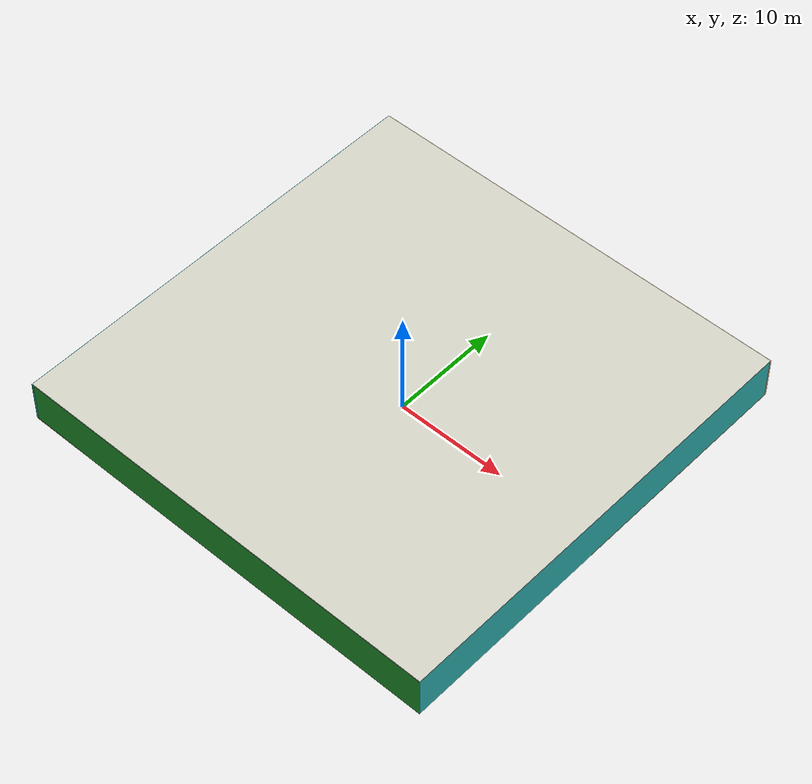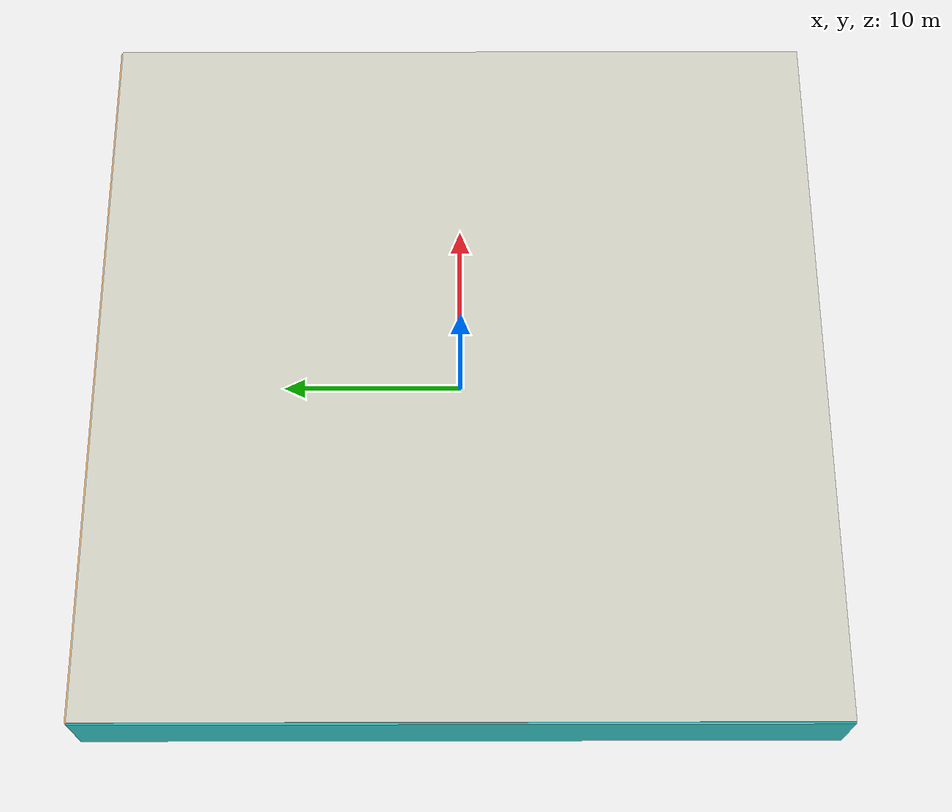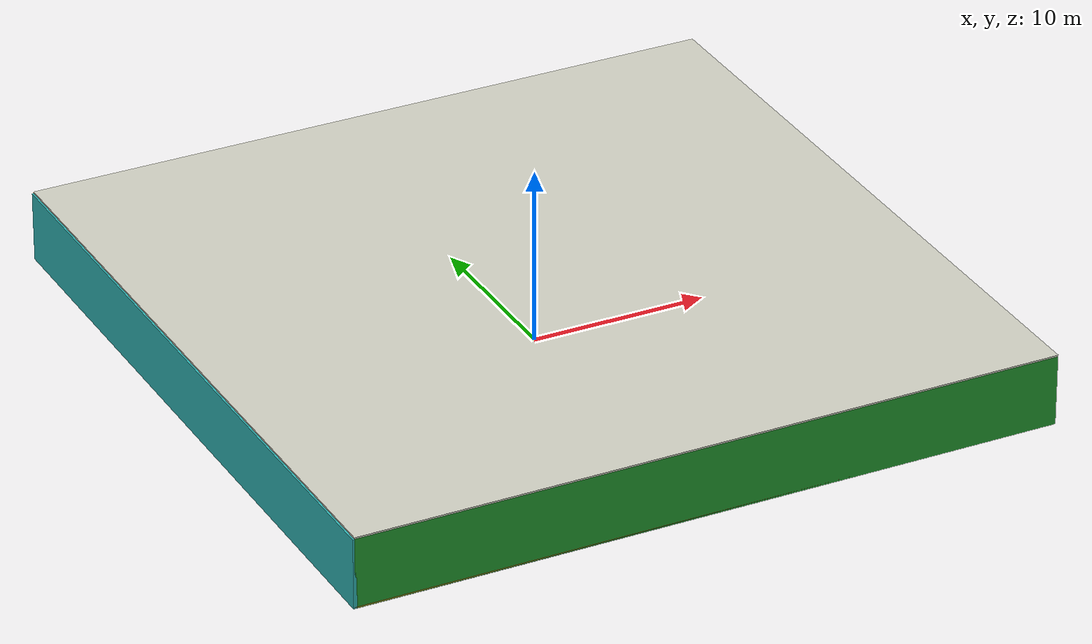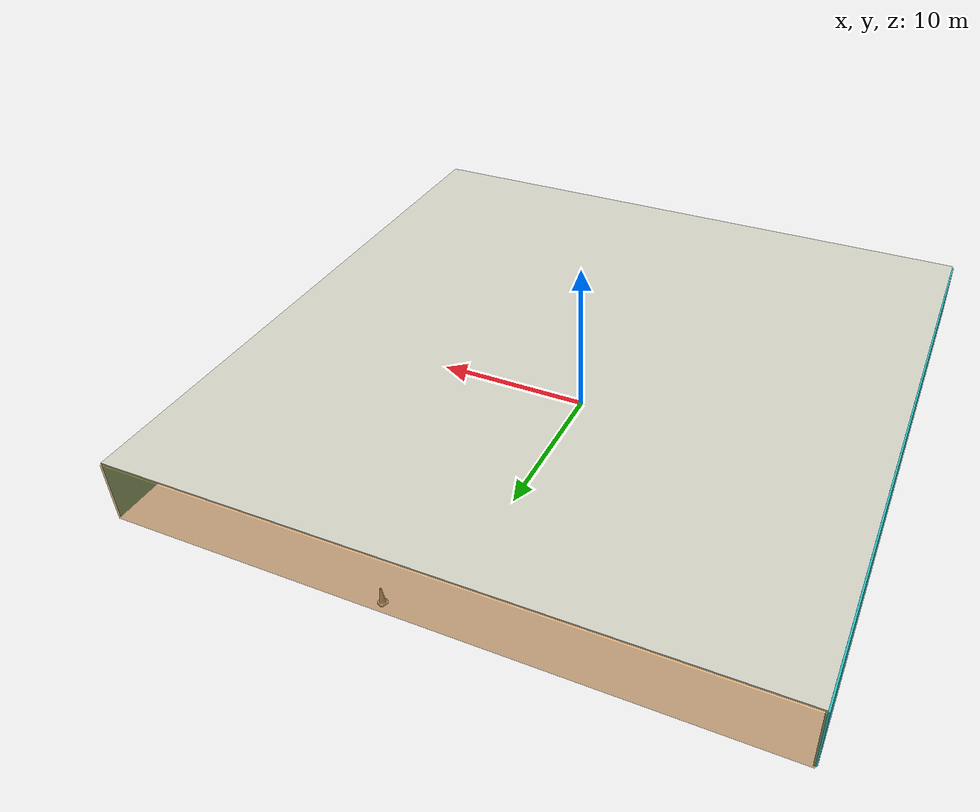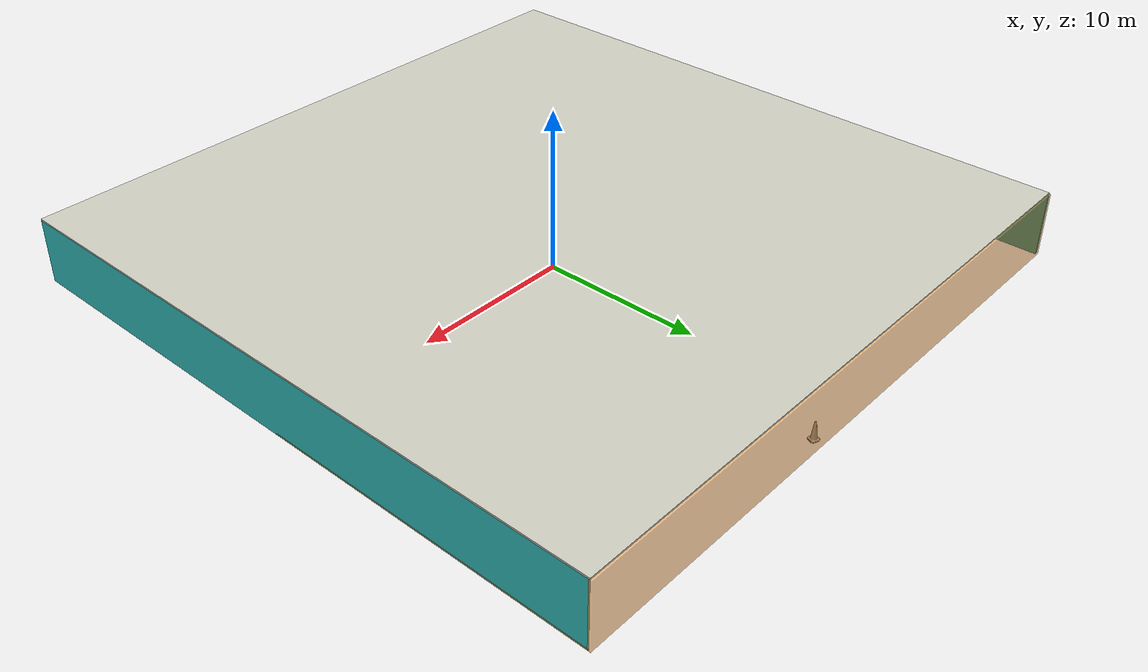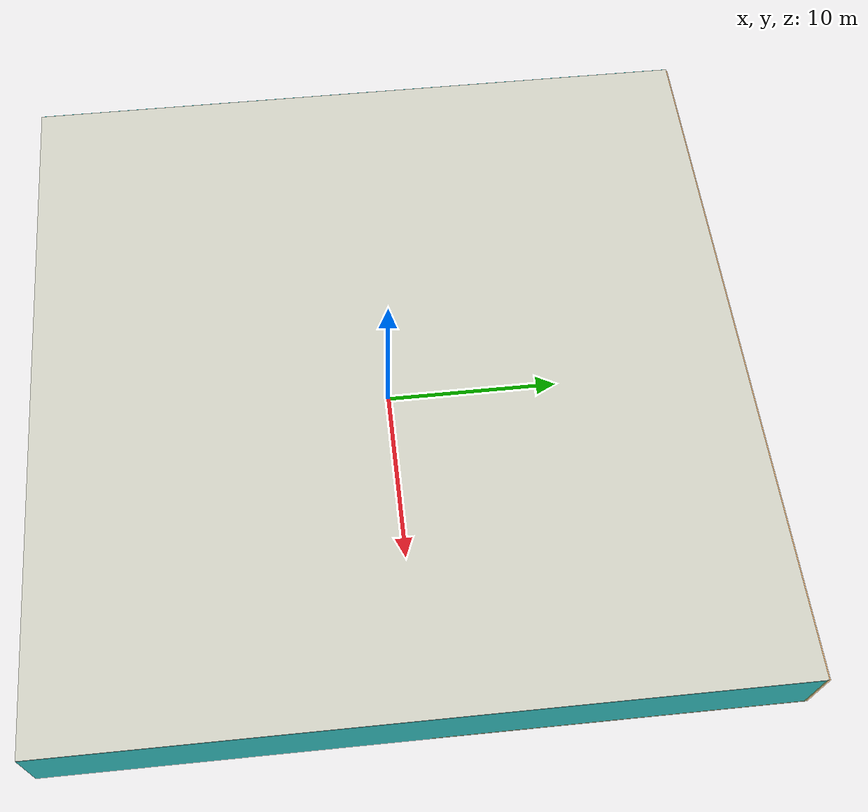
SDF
<sdf version="1.4">
 <world name="default">
  <physics type="ode">
   <max_step_size>0.001</max_step_size>
   <real_time_factor>1</real_time_factor>
   <real_time_update_rate>1000</real_time_update_rate>
   <gravity>0 0 -9.8</gravity>
  </physics>
  <scene><ambient>0.4 0.4 0.4 1</ambient><background>0.7 0.7 0.7 1</background><shadows>1</shadows></scene>
  <model name="Surrounding">
   <static>1</static>
   <link name="Ceiling">
    <collision name="Ceiling_Collision"><geometry><box><size>40 40 0.1</size></box></geometry></collision>
    <visual name="Ceiling_Visual">
     <geometry><box><size>40 40 0.1</size></box></geometry>
     <material>
      <script><uri>file://media/materials/scripts/gazebo.material</uri><name>Gazebo/PaintedWall</name></script>
     </material>
    </visual>
    <pose>0 0 4.05 0 0 0</pose>
   </link>
   <link name="Wall_South">
    <collision name="Wall_South_Collision">
     <geometry><box><size>40 0 4</size></box></geometry>
     <pose>0 0 2 0 -0 0</pose>
    </collision>
    <visual name="Wall_South_Visual">
     <pose>0 0 2 0 -0 0</pose>
     <geometry><box><size>40 0 4</size></box></geometry>
     <material>
      <script><uri>file://media/materials/scripts/gazebo.material</uri><name>Gazebo/Green</name></script>
     </material>
    </visual>
    <velocity_decay><linear>0</linear><angular>0</angular></velocity_decay>
    <pose>0 -20 0 0 -0 0</pose>
   </link>
   <link name="Wall_East">
    <collision name="Wall_21_Collision">
     <geometry><box><size>40 0 4</size></box></geometry>
     <pose>0 0 2 0 -0 0</pose>
    </collision>
    <visual name="Wall_21_Visual">
     <pose>0 0 2 0 -0 0</pose>
     <geometry><box><size>40 0 4</size></box></geometry>
     <material>
      <script><uri>file://media/materials/scripts/gazebo.material</uri><name>Gazebo/TurquoiseGlow</name></script>
     </material>
    </visual>
    <velocity_decay><linear>0</linear><angular>0</angular></velocity_decay>
    <pose>20 0 0 0 -0 1.5708</pose>
   </link>
   <link name="Wall_North">
    <collision name="Wall_22_Collision">
     <geometry><box><size>40 0.2 4</size></box></geometry>
     <pose>0 0 2 0 -0 0</pose>
    </collision>
    <visual name="Wall_22_Visual">
     <pose>0 0 2 0 -0 0</pose>
     <geometry><box><size>40 0.2 4</size></box></geometry>
     <material>
      <script>
       <uri>file://media/materials/scripts/gazebo.material</uri>
       <name>Gazebo/OrangeTransparent</name>
      </script>
     </material>
    </visual>
    <velocity_decay><linear>0</linear><angular>0</angular></velocity_decay>
    <pose>0 20 0 0 -0 0</pose>
   </link>
   <link name="Wall_West">
    <collision name="Wall_23_Collision">
     <geometry><box><size>40 0.2 4</size></box></geometry>
     <pose>0 0 2 0 -0 0</pose>
    </collision>
    <visual name="Wall_23_Visual">
     <pose>0 0 2 0 -0 0</pose>
     <geometry><box><size>40 0.2 4</size></box></geometry>
     <material>
      <script>
       <uri>file://media/materials/scripts/gazebo.material</uri>
       <name>Gazebo/TurquoiseGlowOutline</name>
      </script>
     </material>
    </visual>
    <velocity_decay><linear>0</linear><angular>0</angular></velocity_decay>
    <pose>-20 0 0 0 0 -1.5708</pose>
   </link>
   <link name="Ground_link">
    <collision name="collision">
     <pose>0 0 .05 0 -0 0</pose>
     <geometry><box><size>40 40 0.1</size></box></geometry>
    </collision>
    <visual name="visual">
     <pose>0 0 .05 0 -0 0</pose>
     <geometry><box><size>40 40 0.1</size></box></geometry>
     <material>
      <script>
       <uri>file://media/materials/scripts/gazebo.material</uri>
       <name>Gazebo/OrangeTransparent</name>
      </script>
     </material>
    </visual>
   </link>
   <static>1</static>
  </model>
  <spherical_coordinates>
   <surface_model>EARTH_WGS84</surface_model>
   <latitude_deg>0</latitude_deg>
   <longitude_deg>0</longitude_deg>
   <elevation>0</elevation>
   <heading_deg>0</heading_deg>
  </spherical_coordinates>
  <light name="lightball_0" type="diffuse">
   <diffuse>0.8 0.8 0.8 1</diffuse>
   <specular>0.2 0.2 0.2 1</specular>
   <attenuation>
    <range>100</range>
    <constant>0.7</constant>
    <linear>0.01</linear>
    <quadratic>0.001</quadratic>
   </attenuation>
   <direction>-0.5 0.1 -0.9</direction>
   <pose>19.2686429171 -6.94027151172 0.790405411763 0 0 0</pose>
  </light>
  <light name="lightball_1" type="diffuse">
   <diffuse>0.8 0.8 0.8 1</diffuse>
   <specular>0.2 0.2 0.2 1</specular>
   <attenuation>
    <range>100</range>
    <constant>0.7</constant>
    <linear>0.01</linear>
    <quadratic>0.001</quadratic>
   </attenuation>
   <direction>-0.5 0.1 -0.9</direction>
   <pose>-15.0217025699 15.9593069814 2.19417919516 0 0 0</pose>
  </light>
  <light name="lightball_2" type="diffuse">
   <diffuse>0.8 0.8 0.8 1</diffuse>
   <specular>0.2 0.2 0.2 1</specular>
   <attenuation>
    <range>100</range>
    <constant>0.7</constant>
    <linear>0.01</linear>
    <quadratic>0.001</quadratic>
   </attenuation>
   <direction>-0.5 0.1 -0.9</direction>
   <pose>1.14670785669 10.9190104448 1.16097501582 0 0 0</pose>
  </light>
  <light name="lightball_3" type="diffuse">
   <diffuse>0.8 0.8 0.8 1</diffuse>
   <specular>0.2 0.2 0.2 1</specular>
   <attenuation>
    <range>100</range>
    <constant>0.7</constant>
    <linear>0.01</linear>
    <quadratic>0.001</quadratic>
   </attenuation>
   <direction>-0.5 0.1 -0.9</direction>
   <pose>-9.8487151694 -8.65744389339 2.94329091983 0 0 0</pose>
  </light>
  <light name="lightball_4" type="diffuse">
   <diffuse>0.8 0.8 0.8 1</diffuse>
   <specular>0.2 0.2 0.2 1</specular>
   <attenuation>
    <range>100</range>
    <constant>0.7</constant>
    <linear>0.01</linear>
    <quadratic>0.001</quadratic>
   </attenuation>
   <direction>-0.5 0.1 -0.9</direction>
   <pose>-0.326451068191 18.1419651892 1.43495444012 0 0 0</pose>
  </light>
  <light name="lightball_5" type="diffuse">
   <diffuse>0.8 0.8 0.8 1</diffuse>
   <specular>0.2 0.2 0.2 1</specular>
   <attenuation>
    <range>100</range>
    <constant>0.7</constant>
    <linear>0.01</linear>
    <quadratic>0.001</quadratic>
   </attenuation>
   <direction>-0.5 0.1 -0.9</direction>
   <pose>11.9944006954 -11.4871551159 2.79154245992 0 0 0</pose>
  </light>
  <light name="lightball_6" type="diffuse">
   <diffuse>0.8 0.8 0.8 1</diffuse>
   <specular>0.2 0.2 0.2 1</specular>
   <attenuation>
    <range>100</range>
    <constant>0.7</constant>
    <linear>0.01</linear>
    <quadratic>0.001</quadratic>
   </attenuation>
   <direction>-0.5 0.1 -0.9</direction>
   <pose>10.6344578444 -0.711649254873 1.42042093867 0 0 0</pose>
  </light>
  <light name="lightball_7" type="diffuse">
   <diffuse>0.8 0.8 0.8 1</diffuse>
   <specular>0.2 0.2 0.2 1</specular>
   <attenuation>
    <range>100</range>
    <constant>0.7</constant>
    <linear>0.01</linear>
    <quadratic>0.001</quadratic>
   </attenuation>
   <direction>-0.5 0.1 -0.9</direction>
   <pose>-19.44875258 19.6519579087 0.783129264852 0 0 0</pose>
  </light>
  <light name="lightball_8" type="diffuse">
   <diffuse>0.8 0.8 0.8 1</diffuse>
   <specular>0.2 0.2 0.2 1</specular>
   <attenuation>
    <range>100</range>
    <constant>0.7</constant>
    <linear>0.01</linear>
    <quadratic>0.001</quadratic>
   </attenuation>
   <direction>-0.5 0.1 -0.9</direction>
   <pose>15.7936124129 -3.70834973045 3.40381608711 0 0 0</pose>
  </light>
  <light name="lightball_9" type="diffuse">
   <diffuse>0.8 0.8 0.8 1</diffuse>
   <specular>0.2 0.2 0.2 1</specular>
   <attenuation>
    <range>100</range>
    <constant>0.7</constant>
    <linear>0.01</linear>
    <quadratic>0.001</quadratic>
   </attenuation>
   <direction>-0.5 0.1 -0.9</direction>
   <pose>12.2723375637 -5.77693063063 2.34232934595 0 0 0</pose>
  </light>
  <include>
   <uri>model://construction_cone</uri>
   <pose>-17.2394800808 -6.10622225699 0 0 0 2.66327060581</pose>
  </include>
  <include>
   <uri>model://textured_shapes</uri>
   <pose>-14.3229162615 10.322649563 0 0 0 0.125200369246</pose>
  </include>
  <include>
   <uri>model://construction_cone</uri>
   <pose>-13.7020368885 12.4045347428 0 0 0 2.87333078108</pose>
  </include>
  <include><uri>model://table</uri><pose>-11.9172883404 -6.27308556742 0 0 0 0.135390965071</pose></include>
  <include>
   <uri>model://construction_cone</uri>
   <pose>-11.1496796317 3.84998417387 0 0 0 1.06525654931</pose>
  </include>
  <include><uri>model://table</uri><pose>-10.5595869189 11.7187073583 0 0 0 2.84609842468</pose></include>
  <include>
   <uri>model://construction_cone</uri>
   <pose>-7.31529962835 -4.69587977022 0 0 0 0.980551404212</pose>
  </include>
  <include><uri>model://cabinet</uri><pose>-9.2954000237 7.08813993401 0 0 0 1.50558636929</pose></include>
  <include>
   <uri>model://robocup_3Dsim_goal</uri>
   <pose>-6.4161565782 -8.12213386246 0 0 0 0.955514976022</pose>
  </include>
  <include>
   <uri>model://construction_cone</uri>
   <pose>-2.94706749804 -13.5286142994 0 0 0 0.918341252036</pose>
  </include>
  <include>
   <uri>model://construction_cone</uri>
   <pose>-3.38085009717 2.66564182522 0 0 0 1.85263860975</pose>
  </include>
  <include>
   <uri>model://robocup_3Dsim_goal</uri>
   <pose>-2.23676384458 10.1669409636 0 0 0 2.92004255559</pose>
  </include>
  <include><uri>model://cabinet</uri><pose>1.42364224105 -11.9135468791 0 0 0 2.46701569011</pose></include>
  <include><uri>model://cabinet</uri><pose>-0.196979618413 0.767307711194 0 0 0 1.63227083865</pose></include>
  <include><uri>model://cabinet</uri><pose>4.65559639725 -10.6567013925 0 0 0 1.98910661544</pose></include>
  <include><uri>model://cabinet</uri><pose>3.08224825293 -2.81846815801 0 0 0 1.72011047345</pose></include>
  <include>
   <uri>model://robocup_3Dsim_goal</uri>
   <pose>4.29748053031 6.22190792462 0 0 0 0.471808460911</pose>
  </include>
  <include><uri>model://cabinet</uri><pose>4.53624386569 10.1991576466 0 0 0 2.00979352295</pose></include>
  <include>
   <uri>model://construction_cone</uri>
   <pose>2.87728715868 19.5149428787 0 0 0 1.18061149523</pose>
  </include>
  <include>
   <uri>model://construction_cone</uri>
   <pose>5.89448255747 -7.38589667753 0 0 0 0.924396710784</pose>
  </include>
  <include><uri>model://table</uri><pose>5.86630770323 -5.80022302792 0 0 0 0.530766139556</pose></include>
  <include>
   <uri>model://robocup_3Dsim_goal</uri>
   <pose>5.56818985951 13.6301330694 0 0 0 2.96005011865</pose>
  </include>
  <include><uri>model://cabinet</uri><pose>11.7121096533 -5.21375533988 0 0 0 0.935734432469</pose></include>
  <include>
   <uri>model://textured_shapes</uri>
   <pose>12.4725803739 13.1859880271 0 0 0 2.67046819004</pose>
  </include>
  <include><uri>model://table</uri><pose>15.9893458586 -16.8891456057 0 0 0 0.106641505556</pose></include>
  <include>
   <uri>model://construction_cone</uri>
   <pose>16.5167009557 -13.6669953348 0 0 0 2.58459809052</pose>
  </include>
  <include>
   <uri>model://construction_cone</uri>
   <pose>14.7633057567 -11.2399341027 0 0 0 0.390413470186</pose>
  </include>
  <include><uri>model://cabinet</uri><pose>16.2214173845 -4.39147885813 0 0 0 3.03194597159</pose></include>
  <include><uri>model://cabinet</uri><pose>16.6066165743 2.68303705891 0 0 0 0.170805902746</pose></include>
  <include><uri>model://table</uri><pose>15.2957744442 8.68703924374 0 0 0 0.721665207454</pose></include>
  <include>
   <uri>model://construction_cone</uri>
   <pose>14.3453478464 13.2237724057 0 0 0 2.68213901356</pose>
  </include>
  <include><uri>model://cabinet</uri><pose>17.5068772515 1.01480237337 0 0 0 2.06123336068</pose></include>
  <include>
   <uri>model://construction_cone</uri>
   <pose>19.2139721984 7.16540064226 0 0 0 2.01270672847</pose>
  </include>
 </world>
</sdf>

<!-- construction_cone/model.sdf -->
<sdf version="1.5">
  <model name="Construction Cone">
    <link name="link">
      <collision name="collision">
        <geometry>
          <mesh>
            <scale>10 10 10</scale>
            <uri>file://isr-testbed/construction_cone/meshes/construction_cone.dae</uri>
          </mesh>
        </geometry>
      </collision>
      <visual name="visual">
        <geometry>
          <mesh>
            <scale>10 10 10</scale>
            <uri>file://isr-testbed/construction_cone/meshes/construction_cone.dae</uri>
          </mesh>
        </geometry>
      </visual>
    </link>
  </model>
</sdf>

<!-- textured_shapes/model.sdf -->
<sdf version="1.6">
  <model name="textured_shapes">
    <pose>0 0 0.5 0 0 0</pose>
    <link name="box">
      <pose>0 -1.5 0 0 0 0</pose>
      <collision name="collision">
        <geometry>
          <box>
            <size>1 1 1</size>
          </box>
        </geometry>
      </collision>
      <visual name="visual">
        <geometry>
          <box>
            <size>1 1 1</size>
          </box>
        </geometry>
        <material>
          <script>
            <uri>model://../model_source/models/textured_shapes/materials/scripts</uri>
            <uri>model://../model_source/models/textured_shapes/materials/textures</uri>
            <name>TexturedShape/Squares</name>
          </script>
        </material>
      </visual>
    </link>
    <link name="sphere">
      <collision name="collision">
        <geometry>
          <sphere>
            <radius>0.5</radius>
          </sphere>
        </geometry>
      </collision>
      <visual name="visual">
        <geometry>
          <sphere>
            <radius>0.5</radius>
          </sphere>
        </geometry>
        <material>
          <script>
            <uri>model://../model_source/models/textured_shapes/materials/scripts</uri>
            <uri>model://../model_source/models/textured_shapes/materials/textures</uri>
            <name>TexturedShape/Squares</name>
          </script>
        </material>
      </visual>
    </link>
    <link name="cylinder">
      <pose>0 1.5 0 0 0 0</pose>
      <collision name="collision">
        <geometry>
          <cylinder>
            <radius>0.5</radius>
            <length>1</length>
          </cylinder>
        </geometry>
      </collision>
      <visual name="visual">
        <geometry>
          <cylinder>
            <radius>0.5</radius>
            <length>1</length>
          </cylinder>
        </geometry>
        <material>
          <script>
            <uri>model://../model_source/models/textured_shapes/materials/scripts</uri>
            <uri>model://../model_source/models/textured_shapes/materials/textures</uri>
            <name>TexturedShape/Squares</name>
          </script>
        </material>
      </visual>
    </link>
  </model>
</sdf>

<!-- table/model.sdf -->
<sdf version="1.5">
  <model name="table">
    <static>true</static>
    <link name="link">
      <collision name="surface">
        <pose>0 0 1.0 0 0 0</pose>
        <geometry>
          <box>
            <size>1.5 0.8 0.03</size>
          </box>
        </geometry>
        <surface>
          <friction>
            <ode>
              <mu>0.6</mu>
              <mu2>0.6</mu2>
            </ode>
          </friction>
        </surface>
      </collision>
      <visual name="visual1">
        <pose>0 0 1.0 0 0 0</pose>
        <geometry>
          <box>
            <size>1.5 0.8 0.03</size>
          </box>
        </geometry>
        <material>
          <script>
            <uri>model://media/materials/scripts/gazebo.material</uri>
            <name>Gazebo/Wood</name>
          </script>
        </material>
      </visual>
      <collision name="front_left_leg">
        <pose>0.68 0.38 0.5 0 0 0</pose>
        <geometry>
          <cylinder>
            <radius>0.02</radius>
            <length>1.0</length>
          </cylinder>
        </geometry>
      </collision>
      <visual name="front_left_leg">
        <pose>0.68 0.38 0.5 0 0 0</pose>
        <geometry>
          <cylinder>
            <radius>0.02</radius>
            <length>1.0</length>
          </cylinder>
        </geometry>
        <material>
          <script>
            <uri>model://media/materials/scripts/gazebo.material</uri>
            <name>Gazebo/Grey</name>
          </script>
        </material>
      </visual>
      <collision name="front_right_leg">
        <pose>0.68 -0.38 0.5 0 0 0</pose>
        <geometry>
          <cylinder>
            <radius>0.02</radius>
            <length>1.0</length>
          </cylinder>
        </geometry>
      </collision>
      <visual name="front_right_leg">
        <pose>0.68 -0.38 0.5 0 0 0</pose>
        <geometry>
          <cylinder>
            <radius>0.02</radius>
            <length>1.0</length>
          </cylinder>
        </geometry>
        <material>
          <script>
            <uri>model://media/materials/scripts/gazebo.material</uri>
            <name>Gazebo/Grey</name>
          </script>
        </material>
      </visual>
      <collision name="back_right_leg">
        <pose>-0.68 -0.38 0.5 0 0 0</pose>
        <geometry>
          <cylinder>
            <radius>0.02</radius>
            <length>1.0</length>
          </cylinder>
        </geometry>
      </collision>
      <visual name="back_right_leg">
        <pose>-0.68 -0.38 0.5 0 0 0</pose>
        <geometry>
          <cylinder>
            <radius>0.02</radius>
            <length>1.0</length>
          </cylinder>
        </geometry>
        <material>
          <script>
            <uri>model://media/materials/scripts/gazebo.material</uri>
            <name>Gazebo/Grey</name>
          </script>
        </material>
      </visual>
      <collision name="back_left_leg">
        <pose>-0.68 0.38 0.5 0 0 0</pose>
        <geometry>
          <cylinder>
            <radius>0.02</radius>
            <length>1.0</length>
          </cylinder>
        </geometry>
      </collision>
      <visual name="back_left_leg">
        <pose>-0.68 0.38 0.5 0 0 0</pose>
        <geometry>
          <cylinder>
            <radius>0.02</radius>
            <length>1.0</length>
          </cylinder>
        </geometry>
        <material>
          <script>
            <uri>model://media/materials/scripts/gazebo.material</uri>
            <name>Gazebo/Grey</name>
          </script>
        </material>
      </visual>
    </link>
  </model>
</sdf>

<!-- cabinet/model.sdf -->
<sdf version="1.5">
  <model name="cabinet">
    <static>true</static>
    <link name="cabinet_bottom_plate">
      <inertial>
        <pose>0 0 -1 0 0 0</pose>
        <inertia>
          <ixx>2.050000</ixx>
          <ixy>0</ixy>
          <ixz>0</ixz>
          <iyy>2.050000</iyy>
          <iyz>0</iyz>
          <izz>2.050000</izz>
        </inertia>
        <mass>25.000000</mass>
      </inertial>
      <collision name="cabinet_bottom_plate_geom">
        <pose>0 0 0.010000 0 0 0</pose>
        <geometry>
          <box>
            <size>0.450000 0.450000 0.020000</size>
          </box>
        </geometry>
      </collision>
      <visual name="cabinet_bottom_plate_geom_visual">
        <pose>0 0 0.010000 0 0 0</pose>
        <geometry>
          <box>
            <size>0.450000 0.450000 0.020000</size>
          </box>
        </geometry>
        <material>
          <script>
            <uri>model://media/materials/scripts/gazebo.material</uri>
            <name>Gazebo/Wood</name>
          </script>
        </material>
      </visual>
      <collision name="cabinet_bottom_plate_geom_cabinet_back_plate">
        <pose>0.235000 0 0.510000 0 0 0</pose>
        <geometry>
          <box>
            <size>0.020000 0.450000 1.020000</size>
          </box>
        </geometry>
      </collision>
      <visual name="cabinet_bottom_plate_geom_cabinet_back_plate_visual">
        <pose>0.235000 0 0.510000 0 0 0</pose>
        <geometry>
          <box>
            <size>0.020000 0.450000 1.020000</size>
          </box>
        </geometry>
        <material>
          <script>
            <uri>model://media/materials/scripts/gazebo.material</uri>
            <name>Gazebo/Wood</name>
          </script>
        </material>
      </visual>
      <collision name="cabinet_bottom_plate_geom_cabinet_left_plate">
        <pose>0 0.235000 0.510000 0 0 0</pose>
        <geometry>
          <box>
            <size>0.450000 0.020000 1.020000</size>
          </box>
        </geometry>
      </collision>
      <visual name="cabinet_bottom_plate_geom_cabinet_left_plate_visual">
        <pose>0 0.235000 0.510000 0 0 0</pose>
        <geometry>
          <box>
            <size>0.450000 0.020000 1.020000</size>
          </box>
        </geometry>
        <material>
          <script>
            <uri>model://media/materials/scripts/gazebo.material</uri>
            <name>Gazebo/Wood</name>
          </script>
        </material>
      </visual>
      <collision name="cabinet_bottom_plate_geom_cabinet_middle_plate">
        <pose>0 0 0.510000 0 0 0</pose>
        <geometry>
          <box>
            <size>0.450000 0.450000 0.020000</size>
          </box>
        </geometry>
      </collision>
      <visual name="cabinet_bottom_plate_geom_cabinet_middle_plate_visual">
        <pose>0 0 0.510000 0 0 0</pose>
        <geometry>
          <box>
            <size>0.450000 0.450000 0.020000</size>
          </box>
        </geometry>
        <material>
          <script>
            <uri>model://media/materials/scripts/gazebo.material</uri>
            <name>Gazebo/Wood</name>
          </script>
        </material>
      </visual>
      <collision name="cabinet_bottom_plate_geom_cabinet_right_plate">
        <pose>0 -0.235000 0.510000 0 0 0</pose>
        <geometry>
          <box>
            <size>0.450000 0.020000 1.020000</size>
          </box>
        </geometry>
      </collision>
      <visual name="cabinet_bottom_plate_geom_cabinet_right_plate_visual">
        <pose>0 -0.235000 0.510000 0 0 0</pose>
        <geometry>
          <box>
            <size>0.450000 0.020000 1.020000</size>
          </box>
        </geometry>
        <material>
          <script>
            <uri>model://media/materials/scripts/gazebo.material</uri>
            <name>Gazebo/Wood</name>
          </script>
        </material>
      </visual>
      <collision name="cabinet_bottom_plate_geom_cabinet_top_plate">
        <pose>0 0 1.010000 0 0 0</pose>
        <geometry>
          <box>
            <size>0.450000 0.450000 0.020000</size>
          </box>
        </geometry>
      </collision>
      <visual name="cabinet_bottom_plate_geom_cabinet_top_plate_visual">
        <pose>0 0 1.010000 0 0 0</pose>
        <geometry>
          <box>
            <size>0.450000 0.450000 0.020000</size>
          </box>
        </geometry>
        <material>
          <script>
            <uri>model://media/materials/scripts/gazebo.material</uri>
            <name>Gazebo/Wood</name>
          </script>
        </material>
      </visual>
    </link>
  </model>
</sdf>

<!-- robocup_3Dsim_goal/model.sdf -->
<sdf version="1.5">
  <model name="robocup_3d_goal">
    <static>true</static>
    <link name="left_post">
      <pose>0 1.05 0.45 0 0 0</pose>
      <collision name="collision">
        <geometry>
          <cylinder>
            <radius>0.05</radius>
            <length>0.9</length>
          </cylinder>
        </geometry>
      </collision>
      <visual name="visual">
        <geometry>
          <cylinder>
            <radius>0.05</radius>
            <length>0.9</length>
          </cylinder>
        </geometry>
        <material>
          <script>
            <uri>file://media/materials/scripts/gazebo.material</uri>
            <name>Gazebo/ZincYellow</name>
          </script>
        </material>
      </visual>
    </link>
    <link name="left_support_horiz_lower">
      <pose>0.30 1.05 0.01 0 0 0</pose>
      <collision name="collision">
        <geometry>
          <box>
            <size>0.50 0.02 0.02</size>
          </box>
        </geometry>
      </collision>
      <visual name="visual">
        <geometry>
          <box>
            <size>0.50 0.02 0.02</size>
          </box>
        </geometry>
        <material>
          <script>
            <uri>file://media/materials/scripts/gazebo.material</uri>
            <name>Gazebo/White</name>
          </script>
        </material>
      </visual>
    </link>
    <link name="left_support_horiz_upper">
      <pose>0.30 1.05 0.79 0 0 0</pose>
      <collision name="collision">
        <geometry>
          <box>
            <size>0.50 0.02 0.02</size>
          </box>
        </geometry>
      </collision>
      <visual name="visual">
        <geometry>
          <box>
            <size>0.50 0.02 0.02</size>
          </box>
        </geometry>
        <material>
          <script>
            <uri>file://media/materials/scripts/gazebo.material</uri>
            <name>Gazebo/White</name>
          </script>
        </material>
      </visual>
    </link>
    <link name="left_support_vertical">
      <pose>0.56 1.05 0.4 0 1.5708 0</pose>
      <collision name="collision">
        <geometry>
          <box>
            <size>0.80 0.02 0.02</size>
          </box>
        </geometry>
      </collision>
      <visual name="visual">
        <geometry>
          <box>
            <size>0.80 0.02 0.02</size>
          </box>
        </geometry>
        <material>
          <script>
            <uri>file://media/materials/scripts/gazebo.material</uri>
            <name>Gazebo/White</name>
          </script>
        </material>
      </visual>
    </link>
    <link name="right_support_horiz_lower">
      <pose>0.30 -1.05 0.01 0 0 0</pose>
      <collision name="collision">
        <geometry>
          <box>
            <size>0.50 0.02 0.02</size>
          </box>
        </geometry>
      </collision>
      <visual name="visual">
        <geometry>
          <box>
            <size>0.50 0.02 0.02</size>
          </box>
        </geometry>
        <material>
          <script>
            <uri>file://media/materials/scripts/gazebo.material</uri>
            <name>Gazebo/White</name>
          </script>
        </material>
      </visual>
    </link>
    <link name="right_support_horiz_upper">
      <pose>0.30 -1.05 0.79 0 0 0</pose>
      <collision name="collision">
        <geometry>
          <box>
            <size>0.50 0.02 0.02</size>
          </box>
        </geometry>
      </collision>
      <visual name="visual">
        <geometry>
          <box>
            <size>0.50 0.02 0.02</size>
          </box>
        </geometry>
        <material>
          <script>
            <uri>file://media/materials/scripts/gazebo.material</uri>
            <name>Gazebo/White</name>
          </script>
        </material>
      </visual>
    </link>
    <link name="right_support_vertical">
      <pose>0.56 -1.05 0.4 0 1.5708 0</pose>
      <collision name="collision">
        <geometry>
          <box>
            <size>0.80 0.02 0.02</size>
          </box>
        </geometry>
      </collision>
      <visual name="visual">
        <geometry>
          <box>
            <size>0.80 0.02 0.02</size>
          </box>
        </geometry>
        <material>
          <script>
            <uri>file://media/materials/scripts/gazebo.material</uri>
            <name>Gazebo/White</name>
          </script>
        </material>
      </visual>
    </link>
    <link name="center_support_horiz_lower">
      <pose>0.56 0 0.01 0 1.5708 0</pose>
      <collision name="collision">
        <geometry>
          <box>
            <size>0.02 2.08 0.02</size>
          </box>
        </geometry>
      </collision>
      <visual name="visual">
        <geometry>
          <box>
            <size>0.02 2.08 0.02</size>
          </box>
        </geometry>
        <material>
          <script>
            <uri>file://media/materials/scripts/gazebo.material</uri>
            <name>Gazebo/White</name>
          </script>
        </material>
      </visual>
    </link>
    <link name="center_support_horiz_upper">
      <pose>0.56 0 0.79 0 1.5708 0</pose>
      <collision name="collision">
        <geometry>
          <box>
            <size>0.02 2.08 0.02</size>
          </box>
        </geometry>
      </collision>
      <visual name="visual">
        <geometry>
          <box>
            <size>0.02 2.08 0.02</size>
          </box>
        </geometry>
        <material>
          <script>
            <uri>file://media/materials/scripts/gazebo.material</uri>
            <name>Gazebo/White</name>
          </script>
        </material>
      </visual>
    </link>
    <link name="right_post">
      <pose>0 -1.05 0.45 0 0 0</pose>
      <collision name="collision">
        <geometry>
          <cylinder>
            <radius>0.05</radius>
            <length>0.9</length>
          </cylinder>
        </geometry>
      </collision>
      <visual name="visual">
        <geometry>
          <cylinder>
            <radius>0.05</radius>
            <length>0.9</length>
          </cylinder>
        </geometry>
        <material>
          <script>
            <uri>file://media/materials/scripts/gazebo.material</uri>
            <name>Gazebo/ZincYellow</name>
          </script>
        </material>
      </visual>
    </link>
    <link name="crossbar">
      <pose>0 0 0.85 1.57 1.57 0</pose>
      <collision name="collision">
        <geometry>
          <cylinder>
            <radius>0.05</radius>
            <length>2.0</length>
          </cylinder>
        </geometry>
      </collision>
      <visual name="visual">
        <geometry>
          <cylinder>
            <radius>0.05</radius>
            <length>2.0</length>
          </cylinder>
        </geometry>
        <material>
          <script>
            <uri>file://media/materials/scripts/gazebo.material</uri>
            <name>Gazebo/ZincYellow</name>
          </script>
        </material>
      </visual>
    </link>
    <link name="center_net">
      <pose>0.56 0 0.40 0 0 0</pose>
      <collision name="collision">
        <geometry>
          <box>
            <size>0.01 2.1 0.80</size>
          </box>
        </geometry>
      </collision>
      <visual name="visual">
        <geometry>
          <box>
            <size>0.01 2.1 0.80</size>
          </box>
        </geometry>
        <material>
          <script>
            <uri>model://../model_source/models/robocup09_spl_field/materials/scripts/</uri>
            <uri>model://../model_source/models/robocup09_spl_field/materials/textures/</uri>
            <name>RoboCup/Net</name>
          </script>
        </material>
      </visual>
    </link>
    <link name="left_net">
      <pose>0.30 1.05 0.40 0 0 0</pose>
      <collision name="collision">
        <geometry>
          <box>
            <size>0.50 0.01 0.76</size>
          </box>
        </geometry>
      </collision>
      <visual name="visual">
        <geometry>
          <box>
            <size>0.50 0.01 0.76</size>
          </box>
        </geometry>
        <material>
          <script>
            <uri>model://../model_source/models/robocup09_spl_field/materials/scripts/</uri>
            <uri>model://../model_source/models/robocup09_spl_field/materials/textures/</uri>
            <name>RoboCup/Net</name>
          </script>
        </material>
      </visual>
    </link>
    <link name="right_net">
      <pose>0.30 -1.05 0.40 0 0 0</pose>
      <collision name="collision">
        <geometry>
          <box>
            <size>0.50 0.01 0.76</size>
          </box>
        </geometry>
      </collision>
      <visual name="visual">
        <geometry>
          <box>
            <size>0.50 0.01 0.76</size>
          </box>
        </geometry>
        <material>
          <script>
            <uri>model://../model_source/models/robocup09_spl_field/materials/scripts/</uri>
            <uri>model://../model_source/models/robocup09_spl_field/materials/textures/</uri>
            <name>RoboCup/Net</name>
          </script>
        </material>
      </visual>
    </link>
  </model>
</sdf>
